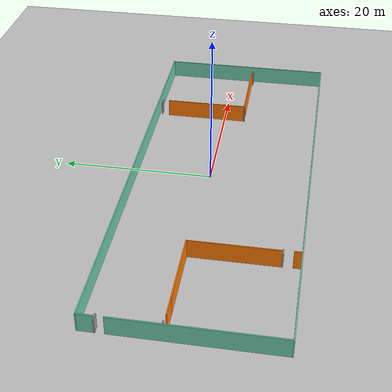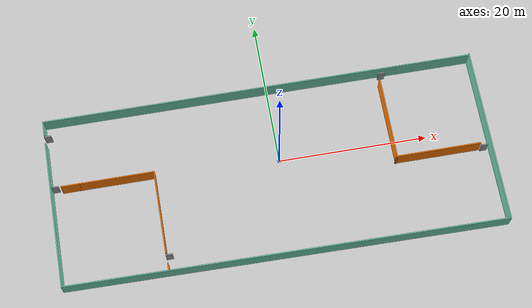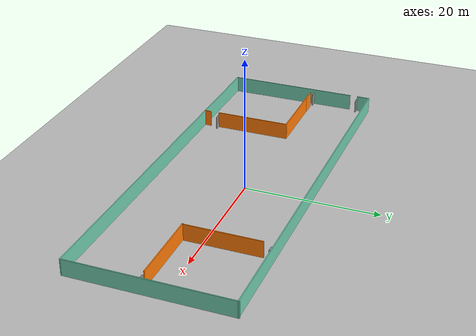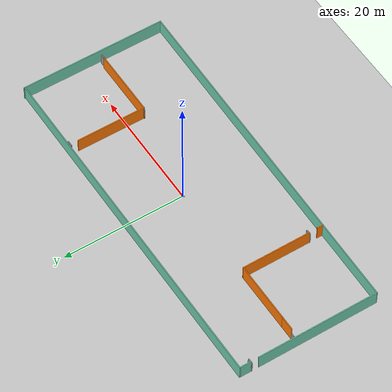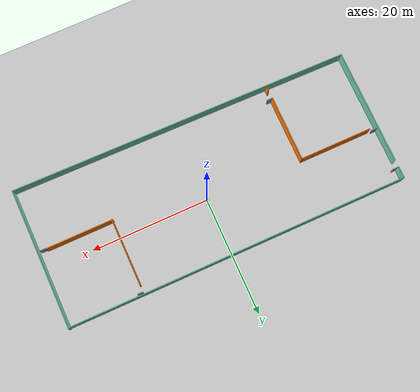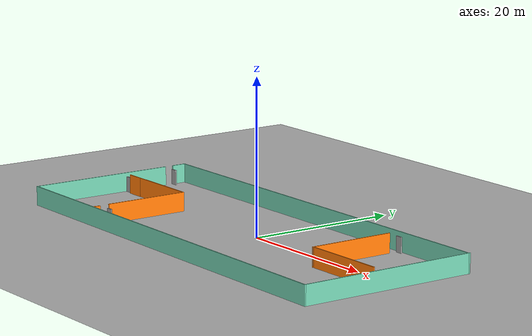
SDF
<sdf version="1.6">
 <world name="default">
  <plugin name="hello" filename="libhello.so"/>
  <light name="sun" type="directional">
   <pose>0 0 10 0 -0 0</pose>
   <diffuse>0.8 0.8 0.8 1</diffuse>
   <specular>0.2 0.2 0.2 1</specular>
   <attenuation>
    <range>1000</range>
    <constant>0.9</constant>
    <linear>0.01</linear>
    <quadratic>0.001</quadratic>
   </attenuation>
   <direction>-0.5 0.1 -0.9</direction>
  </light>
  <model name="ground_plane">
   <static>1</static>
   <link name="link">
    <collision name="collision">
     <geometry><plane><normal>0 0 1</normal><size>100 100</size></plane></geometry>
     <surface>
      <contact><collide_bitmask>65535</collide_bitmask></contact>
      <friction><ode><mu>100</mu><mu2>50</mu2></ode></friction>
     </surface>
    </collision>
    <visual name="visual">
     <cast_shadows>0</cast_shadows>
     <geometry><plane><normal>0 0 1</normal><size>100 100</size></plane></geometry>
     <material>
      <script><uri>file://media/materials/scripts/gazebo.material</uri><name>Gazebo/Grey</name></script>
     </material>
    </visual>
   </link>
  </model>
  <gravity>0 0 -9.8</gravity>
  <magnetic_field>6e-06 2.3e-05 -4.2e-05</magnetic_field>
  <atmosphere type="adiabatic"/>
  <physics name="default_physics" default="0" type="ode">
   <max_step_size>0.001</max_step_size>
   <real_time_factor>1</real_time_factor>
   <real_time_update_rate>1000</real_time_update_rate>
  </physics>
  <scene><ambient>0.4 0.4 0.4 1</ambient><background>0.7 0.7 0.7 1</background><shadows>1</shadows></scene>
  <spherical_coordinates>
   <surface_model>EARTH_WGS84</surface_model>
   <latitude_deg>0</latitude_deg>
   <longitude_deg>0</longitude_deg>
   <elevation>0</elevation>
   <heading_deg>0</heading_deg>
  </spherical_coordinates>
  <model name="HumanoidRobot">
   <link name="link_0">
    <pose>0.02 0 0.1 0 -0 0</pose>
    <inertial>
     <mass>1</mass>
     <inertia>
      <ixx>0.166667</ixx>
      <ixy>0</ixy>
      <ixz>0</ixz>
      <iyy>0.166667</iyy>
      <iyz>0</iyz>
      <izz>0.166667</izz>
     </inertia>
    </inertial>
    <visual name="visual">
     <geometry><box><size>0.4 0.2 0.1</size></box></geometry>
     <material>
      <lighting>1</lighting>
      <script><uri>file://media/materials/scripts/gazebo.material</uri><name>Gazebo/Grey</name></script>
      <shader type="pixel"><normal_map>__default__</normal_map></shader>
      <ambient>0.3 0.3 0.3 1</ambient>
      <diffuse>0.7 0.7 0.7 1</diffuse>
      <specular>0.01 0.01 0.01 1</specular>
      <emissive>0 0 0 1</emissive>
     </material>
    </visual>
    <collision name="collision">
     <geometry><box><size>0.4 0.2 0.1</size></box></geometry>
     <surface>
      <friction>
       <ode><mu>1</mu><mu2>1</mu2><fdir1>0 0 0</fdir1><slip1>0</slip1><slip2>0</slip2></ode>
       <torsional>
        <coefficient>1</coefficient>
        <patch_radius>0</patch_radius>
        <surface_radius>0</surface_radius>
        <use_patch_radius>1</use_patch_radius>
        <ode><slip>0</slip></ode>
       </torsional>
      </friction>
      <bounce><restitution_coefficient>0</restitution_coefficient><threshold>1e+06</threshold></bounce>
      <contact>
       <collide_without_contact>0</collide_without_contact>
       <collide_without_contact_bitmask>1</collide_without_contact_bitmask>
       <collide_bitmask>1</collide_bitmask>
       <ode>
        <soft_cfm>0</soft_cfm>
        <soft_erp>0.2</soft_erp>
        <kp>1e+13</kp>
        <kd>1</kd>
        <max_vel>0.01</max_vel>
        <min_depth>0</min_depth>
       </ode>
       <bullet>
        <split_impulse>1</split_impulse>
        <split_impulse_penetration_threshold>-0.01</split_impulse_penetration_threshold>
        <soft_cfm>0</soft_cfm>
        <soft_erp>0.2</soft_erp>
        <kp>1e+13</kp>
        <kd>1</kd>
       </bullet>
      </contact>
     </surface>
    </collision>
   </link>
   <link name="link_1">
    <pose>0.12 0.13 0.1 0.000335 1.5707 1.57046</pose>
    <inertial>
     <mass>1</mass>
     <inertia><ixx>0.145833</ixx><ixy>0</ixy><ixz>0</ixz><iyy>0.145833</iyy><iyz>0</iyz><izz>0.125</izz></inertia>
    </inertial>
    <visual name="visual">
     <geometry><cylinder><radius>0.1</radius><length>0.05</length></cylinder></geometry>
     <material>
      <lighting>1</lighting>
      <script><uri>file://media/materials/scripts/gazebo.material</uri><name>Gazebo/Grey</name></script>
      <shader type="pixel"><normal_map>__default__</normal_map></shader>
      <ambient>0.3 0.3 0.3 1</ambient>
      <diffuse>0.7 0.7 0.7 1</diffuse>
      <specular>0.01 0.01 0.01 1</specular>
      <emissive>0 0 0 1</emissive>
     </material>
    </visual>
    <collision name="collision">
     <geometry><cylinder><radius>0.1</radius><length>0.05</length></cylinder></geometry>
     <surface>
      <friction>
       <ode><mu>1</mu><mu2>1</mu2><fdir1>0 0 0</fdir1><slip1>0</slip1><slip2>0</slip2></ode>
       <torsional>
        <coefficient>1</coefficient>
        <patch_radius>0</patch_radius>
        <surface_radius>0</surface_radius>
        <use_patch_radius>1</use_patch_radius>
        <ode><slip>0</slip></ode>
       </torsional>
      </friction>
      <bounce><restitution_coefficient>0</restitution_coefficient><threshold>1e+06</threshold></bounce>
      <contact>
       <collide_without_contact>0</collide_without_contact>
       <collide_without_contact_bitmask>1</collide_without_contact_bitmask>
       <collide_bitmask>1</collide_bitmask>
       <ode>
        <soft_cfm>0</soft_cfm>
        <soft_erp>0.2</soft_erp>
        <kp>1e+13</kp>
        <kd>1</kd>
        <max_vel>0.01</max_vel>
        <min_depth>0</min_depth>
       </ode>
       <bullet>
        <split_impulse>1</split_impulse>
        <split_impulse_penetration_threshold>-0.01</split_impulse_penetration_threshold>
        <soft_cfm>0</soft_cfm>
        <soft_erp>0.2</soft_erp>
        <kp>1e+13</kp>
        <kd>1</kd>
       </bullet>
      </contact>
     </surface>
    </collision>
   </link>
   <link name="link_1_clone">
    <pose>0.12 -0.13 0.1 0.000427 1.5707 1.57037</pose>
    <inertial>
     <mass>1</mass>
     <inertia><ixx>0.145833</ixx><ixy>0</ixy><ixz>0</ixz><iyy>0.145833</iyy><iyz>0</iyz><izz>0.125</izz></inertia>
    </inertial>
    <visual name="visual">
     <geometry><cylinder><radius>0.1</radius><length>0.05</length></cylinder></geometry>
     <material>
      <lighting>1</lighting>
      <script><uri>file://media/materials/scripts/gazebo.material</uri><name>Gazebo/Grey</name></script>
      <shader type="pixel"><normal_map>__default__</normal_map></shader>
      <ambient>0.3 0.3 0.3 1</ambient>
      <diffuse>0.7 0.7 0.7 1</diffuse>
      <specular>0.01 0.01 0.01 1</specular>
      <emissive>0 0 0 1</emissive>
     </material>
    </visual>
    <collision name="collision">
     <geometry><cylinder><radius>0.1</radius><length>0.05</length></cylinder></geometry>
     <surface>
      <friction>
       <ode><mu>1</mu><mu2>1</mu2><fdir1>0 0 0</fdir1><slip1>0</slip1><slip2>0</slip2></ode>
       <torsional>
        <coefficient>1</coefficient>
        <patch_radius>0</patch_radius>
        <surface_radius>0</surface_radius>
        <use_patch_radius>1</use_patch_radius>
        <ode><slip>0</slip></ode>
       </torsional>
      </friction>
      <bounce><restitution_coefficient>0</restitution_coefficient><threshold>1e+06</threshold></bounce>
      <contact>
       <collide_without_contact>0</collide_without_contact>
       <collide_without_contact_bitmask>1</collide_without_contact_bitmask>
       <collide_bitmask>1</collide_bitmask>
       <ode>
        <soft_cfm>0</soft_cfm>
        <soft_erp>0.2</soft_erp>
        <kp>1e+13</kp>
        <kd>1</kd>
        <max_vel>0.01</max_vel>
        <min_depth>0</min_depth>
       </ode>
       <bullet>
        <split_impulse>1</split_impulse>
        <split_impulse_penetration_threshold>-0.01</split_impulse_penetration_threshold>
        <soft_cfm>0</soft_cfm>
        <soft_erp>0.2</soft_erp>
        <kp>1e+13</kp>
        <kd>1</kd>
       </bullet>
      </contact>
     </surface>
    </collision>
   </link>
   <link name="link_1_clone_clone">
    <pose>-0.13 -0.13 0.1 4.8e-05 1.5707 1.57075</pose>
    <inertial>
     <mass>1</mass>
     <inertia><ixx>0.145833</ixx><ixy>0</ixy><ixz>0</ixz><iyy>0.145833</iyy><iyz>0</iyz><izz>0.125</izz></inertia>
    </inertial>
    <visual name="visual">
     <geometry><cylinder><radius>0.1</radius><length>0.05</length></cylinder></geometry>
     <material>
      <lighting>1</lighting>
      <script><uri>file://media/materials/scripts/gazebo.material</uri><name>Gazebo/Grey</name></script>
      <shader type="pixel"><normal_map>__default__</normal_map></shader>
      <ambient>0.3 0.3 0.3 1</ambient>
      <diffuse>0.7 0.7 0.7 1</diffuse>
      <specular>0.01 0.01 0.01 1</specular>
      <emissive>0 0 0 1</emissive>
     </material>
    </visual>
    <collision name="collision">
     <geometry><cylinder><radius>0.1</radius><length>0.05</length></cylinder></geometry>
     <surface>
      <friction>
       <ode><mu>1</mu><mu2>1</mu2><fdir1>0 0 0</fdir1><slip1>0</slip1><slip2>0</slip2></ode>
       <torsional>
        <coefficient>1</coefficient>
        <patch_radius>0</patch_radius>
        <surface_radius>0</surface_radius>
        <use_patch_radius>1</use_patch_radius>
        <ode><slip>0</slip></ode>
       </torsional>
      </friction>
      <bounce><restitution_coefficient>0</restitution_coefficient><threshold>1e+06</threshold></bounce>
      <contact>
       <collide_without_contact>0</collide_without_contact>
       <collide_without_contact_bitmask>1</collide_without_contact_bitmask>
       <collide_bitmask>1</collide_bitmask>
       <ode>
        <soft_cfm>0</soft_cfm>
        <soft_erp>0.2</soft_erp>
        <kp>1e+13</kp>
        <kd>1</kd>
        <max_vel>0.01</max_vel>
        <min_depth>0</min_depth>
       </ode>
       <bullet>
        <split_impulse>1</split_impulse>
        <split_impulse_penetration_threshold>-0.01</split_impulse_penetration_threshold>
        <soft_cfm>0</soft_cfm>
        <soft_erp>0.2</soft_erp>
        <kp>1e+13</kp>
        <kd>1</kd>
       </bullet>
      </contact>
     </surface>
    </collision>
   </link>
   <link name="link_1_clone_clone_0">
    <pose>-0.13 0.13 0.1 0.000427 1.5707 1.57037</pose>
    <inertial>
     <mass>1</mass>
     <inertia><ixx>0.145833</ixx><ixy>0</ixy><ixz>0</ixz><iyy>0.145833</iyy><iyz>0</iyz><izz>0.125</izz></inertia>
    </inertial>
    <visual name="visual">
     <geometry><cylinder><radius>0.1</radius><length>0.05</length></cylinder></geometry>
     <material>
      <lighting>1</lighting>
      <script><uri>file://media/materials/scripts/gazebo.material</uri><name>Gazebo/Grey</name></script>
      <shader type="pixel"><normal_map>__default__</normal_map></shader>
      <ambient>0.3 0.3 0.3 1</ambient>
      <diffuse>0.7 0.7 0.7 1</diffuse>
      <specular>0.01 0.01 0.01 1</specular>
      <emissive>0 0 0 1</emissive>
     </material>
    </visual>
    <collision name="collision">
     <geometry><cylinder><radius>0.1</radius><length>0.05</length></cylinder></geometry>
     <surface>
      <friction>
       <ode><mu>1</mu><mu2>1</mu2><fdir1>0 0 0</fdir1><slip1>0</slip1><slip2>0</slip2></ode>
       <torsional>
        <coefficient>1</coefficient>
        <patch_radius>0</patch_radius>
        <surface_radius>0</surface_radius>
        <use_patch_radius>1</use_patch_radius>
        <ode><slip>0</slip></ode>
       </torsional>
      </friction>
      <bounce><restitution_coefficient>0</restitution_coefficient><threshold>1e+06</threshold></bounce>
      <contact>
       <collide_without_contact>0</collide_without_contact>
       <collide_without_contact_bitmask>1</collide_without_contact_bitmask>
       <collide_bitmask>1</collide_bitmask>
       <ode>
        <soft_cfm>0</soft_cfm>
        <soft_erp>0.2</soft_erp>
        <kp>1e+13</kp>
        <kd>1</kd>
        <max_vel>0.01</max_vel>
        <min_depth>0</min_depth>
       </ode>
       <bullet>
        <split_impulse>1</split_impulse>
        <split_impulse_penetration_threshold>-0.01</split_impulse_penetration_threshold>
        <soft_cfm>0</soft_cfm>
        <soft_erp>0.2</soft_erp>
        <kp>1e+13</kp>
        <kd>1</kd>
       </bullet>
      </contact>
     </surface>
    </collision>
   </link>
   <joint name="link_0_JOINT_0" type="revolute">
    <parent>link_0</parent>
    <child>link_1</child>
    <axis>
     <xyz>0 1 0</xyz>
     <use_parent_model_frame>0</use_parent_model_frame>
     <limit>
      <lower>-1.79769e+308</lower>
      <upper>1.79769e+308</upper>
      <effort>-1</effort>
      <velocity>-1</velocity>
     </limit>
     <dynamics>
      <spring_reference>0</spring_reference>
      <spring_stiffness>0</spring_stiffness>
      <damping>0</damping>
     </dynamics>
    </axis>
    <physics>
     <ode><limit><cfm>0</cfm><erp>0.2</erp></limit><suspension><cfm>0</cfm><erp>0.2</erp></suspension></ode>
    </physics>
   </joint>
   <joint name="link_0_JOINT_1" type="revolute">
    <parent>link_0</parent>
    <child>link_1_clone</child>
    <pose>0 0 0 0 -0.06 0</pose>
    <axis>
     <xyz>0 1 0</xyz>
     <use_parent_model_frame>0</use_parent_model_frame>
     <limit>
      <lower>-1.79769e+308</lower>
      <upper>1.79769e+308</upper>
      <effort>-1</effort>
      <velocity>-1</velocity>
     </limit>
     <dynamics>
      <spring_reference>0</spring_reference>
      <spring_stiffness>0</spring_stiffness>
      <damping>0</damping>
     </dynamics>
    </axis>
    <physics>
     <ode><limit><cfm>0</cfm><erp>0.2</erp></limit><suspension><cfm>0</cfm><erp>0.2</erp></suspension></ode>
    </physics>
   </joint>
   <joint name="link_0_JOINT_2" type="revolute">
    <parent>link_0</parent>
    <child>link_1_clone_clone</child>
    <axis>
     <xyz>0 1 0</xyz>
     <use_parent_model_frame>0</use_parent_model_frame>
     <limit>
      <lower>-1.79769e+308</lower>
      <upper>1.79769e+308</upper>
      <effort>-1</effort>
      <velocity>-1</velocity>
     </limit>
     <dynamics>
      <spring_reference>0</spring_reference>
      <spring_stiffness>0</spring_stiffness>
      <damping>0</damping>
     </dynamics>
    </axis>
    <physics>
     <ode><limit><cfm>0</cfm><erp>0.2</erp></limit><suspension><cfm>0</cfm><erp>0.2</erp></suspension></ode>
    </physics>
   </joint>
   <joint name="link_0_JOINT_3" type="revolute">
    <parent>link_0</parent>
    <child>link_1_clone_clone_0</child>
    <axis>
     <xyz>0 1 0</xyz>
     <use_parent_model_frame>0</use_parent_model_frame>
     <limit>
      <lower>-1.79769e+308</lower>
      <upper>1.79769e+308</upper>
      <effort>-1</effort>
      <velocity>-1</velocity>
     </limit>
     <dynamics>
      <spring_reference>0</spring_reference>
      <spring_stiffness>0</spring_stiffness>
      <damping>0</damping>
     </dynamics>
    </axis>
    <physics>
     <ode><limit><cfm>0</cfm><erp>0.2</erp></limit><suspension><cfm>0</cfm><erp>0.2</erp></suspension></ode>
    </physics>
   </joint>
   <static>0</static>
  </model>
  <model name="Building">
   <pose>-1.11028 -1.8145 0 0 -0 0</pose>
   <link name="Door_0">
    <collision name="Door_0_Collision">
     <geometry><box><size>0.9 0.17 2</size></box></geometry>
     <pose>0 0 1 0 -0 0</pose>
    </collision>
    <visual name="Door_0_Visual">
     <pose>0 0 1 0 -0 0</pose>
     <geometry><box><size>0.9 0.17 2</size></box></geometry>
     <material>
      <script><uri>file://media/materials/scripts/gazebo.material</uri><name>Gazebo/Grey</name></script>
     </material>
    </visual>
    <pose>-28.7575 9.84664 0 0 -0 0</pose>
   </link>
   <link name="Door_1">
    <collision name="Door_1_Collision">
     <geometry><box><size>0.9 0.17 2</size></box></geometry>
     <pose>0 0 1 0 -0 0</pose>
    </collision>
    <visual name="Door_1_Visual">
     <pose>0 0 1 0 -0 0</pose>
     <geometry><box><size>0.9 0.17 2</size></box></geometry>
     <material>
      <script><uri>file://media/materials/scripts/gazebo.material</uri><name>Gazebo/Grey</name></script>
     </material>
    </visual>
    <pose>-15.1147 -9.07776 0 0 -0 0</pose>
   </link>
   <link name="Door_2">
    <collision name="Door_2_Collision">
     <geometry><box><size>0.9 0.17 2</size></box></geometry>
     <pose>0 0 1 0 -0 0</pose>
    </collision>
    <visual name="Door_2_Visual">
     <pose>0 0 1 0 -0 0</pose>
     <geometry><box><size>0.9 0.17 2</size></box></geometry>
     <material>
      <script><uri>file://media/materials/scripts/gazebo.material</uri><name>Gazebo/Grey</name></script>
     </material>
    </visual>
    <pose>-28.5663 2.5444 0 0 -0 0</pose>
   </link>
   <link name="Door_4">
    <collision name="Door_4_Collision">
     <geometry><box><size>0.9 0.17 2</size></box></geometry>
     <pose>0 0 1 0 -0 0</pose>
    </collision>
    <visual name="Door_4_Visual">
     <pose>0 0 1 0 -0 0</pose>
     <geometry><box><size>0.9 0.17 2</size></box></geometry>
     <material>
      <script><uri>file://media/materials/scripts/gazebo.material</uri><name>Gazebo/Grey</name></script>
     </material>
    </visual>
    <pose>28.2667 -1.23216 0 0 -0 0</pose>
   </link>
   <link name="Door_5">
    <collision name="Door_5_Collision">
     <geometry><box><size>0.9 0.17 2</size></box></geometry>
     <pose>0 0 1 0 -0 0</pose>
    </collision>
    <visual name="Door_5_Visual">
     <pose>0 0 1 0 -0 0</pose>
     <geometry><box><size>0.9 0.17 2</size></box></geometry>
     <material>
      <script><uri>file://media/materials/scripts/gazebo.material</uri><name>Gazebo/Grey</name></script>
     </material>
    </visual>
    <pose>16.8813 11.3908 0 0 -0 0</pose>
   </link>
   <link name="Wall_0">
    <collision name="Wall_0_Collision">
     <geometry><box><size>19.8005 0.15 2.5</size></box></geometry>
     <pose>0 0 1.25 0 -0 0</pose>
    </collision>
    <visual name="Wall_0_Visual">
     <pose>0 0 1.25 0 -0 0</pose>
     <geometry><box><size>19.8005 0.15 2.5</size></box></geometry>
     <material>
      <script><uri>file://media/materials/scripts/gazebo.material</uri><name>Gazebo/Grey</name></script>
      <ambient>0.435294 0.796078 0.67451 1</ambient>
     </material>
     <meta><layer>0</layer></meta>
    </visual>
    <pose>-29.1106 -1.17691 0 0 0 -1.5708</pose>
   </link>
   <link name="Wall_1">
    <collision name="Wall_1_Collision">
     <geometry><box><size>58.3767 0.15 2.5</size></box></geometry>
     <pose>0 0 1.25 0 -0 0</pose>
    </collision>
    <visual name="Wall_1_Visual">
     <pose>0 0 1.25 0 -0 0</pose>
     <geometry><box><size>58.3767 0.15 2.5</size></box></geometry>
     <material>
      <script><uri>file://media/materials/scripts/gazebo.material</uri><name>Gazebo/Grey</name></script>
      <ambient>0.435294 0.796078 0.67451 1</ambient>
     </material>
     <meta><layer>0</layer></meta>
    </visual>
    <pose>0 -11.524 0 0 0 -0.013673</pose>
   </link>
   <link name="Wall_12">
    <collision name="Wall_12_Collision">
     <geometry><box><size>2.5 0.15 2.5</size></box></geometry>
     <pose>0 0 1.25 0 -0 0</pose>
    </collision>
    <visual name="Wall_12_Visual">
     <pose>0 0 1.25 0 -0 0</pose>
     <geometry><box><size>2.5 0.15 2.5</size></box></geometry>
     <material>
      <script><uri>file://media/materials/scripts/gazebo.material</uri><name>Gazebo/Grey</name></script>
      <ambient>0.996078 0.47451 0.0196078 1</ambient>
     </material>
     <meta><layer>0</layer></meta>
    </visual>
    <pose>-26.5095 2.28662 0 0 -0 3.14159</pose>
   </link>
   <link name="Wall_14">
    <collision name="Wall_14_Collision">
     <geometry><box><size>0.25 0.15 2.5</size></box></geometry>
     <pose>0 0 1.25 0 -0 0</pose>
    </collision>
    <visual name="Wall_14_Visual">
     <pose>0 0 1.25 0 -0 0</pose>
     <geometry><box><size>0.25 0.15 2.5</size></box></geometry>
     <material>
      <script><uri>file://media/materials/scripts/gazebo.material</uri><name>Gazebo/Grey</name></script>
      <ambient>1 1 1 1</ambient>
     </material>
     <meta><layer>0</layer></meta>
    </visual>
    <pose>16.343 -1.08341 0 0 -0 2.61799</pose>
   </link>
   <link name="Wall_15">
    <collision name="Wall_15_Collision">
     <geometry><box><size>11.5 0.15 2.5</size></box></geometry>
     <pose>0 0 1.25 0 -0 0</pose>
    </collision>
    <visual name="Wall_15_Visual">
     <pose>0 0 1.25 0 -0 0</pose>
     <geometry><box><size>11.5 0.15 2.5</size></box></geometry>
     <material>
      <script><uri>file://media/materials/scripts/gazebo.material</uri><name>Gazebo/Grey</name></script>
      <ambient>0.996078 0.47451 0.0196078 1</ambient>
     </material>
     <meta><layer>0</layer></meta>
    </visual>
    <pose>21.9747 -1.05841 0 0 -0 0</pose>
   </link>
   <link name="Wall_17">
    <collision name="Wall_17_Collision">
     <geometry><box><size>11.5 0.15 2.5</size></box></geometry>
     <pose>0 0 1.25 0 -0 0</pose>
    </collision>
    <visual name="Wall_17_Visual">
     <pose>0 0 1.25 0 -0 0</pose>
     <geometry><box><size>11.5 0.15 2.5</size></box></geometry>
     <material>
      <script><uri>file://media/materials/scripts/gazebo.material</uri><name>Gazebo/Grey</name></script>
      <ambient>0.996078 0.47451 0.0196078 1</ambient>
     </material>
     <meta><layer>0</layer></meta>
    </visual>
    <pose>16.3863 4.56659 0 0 -0 1.5708</pose>
   </link>
   <link name="Wall_2">
    <collision name="Wall_2_Collision">
     <geometry><box><size>23.8713 0.15 2.5</size></box></geometry>
     <pose>0 0 1.25 0 -0 0</pose>
    </collision>
    <visual name="Wall_2_Visual">
     <pose>0 0 1.25 0 -0 0</pose>
     <geometry><box><size>23.8713 0.15 2.5</size></box></geometry>
     <material>
      <script><uri>file://media/materials/scripts/gazebo.material</uri><name>Gazebo/Grey</name></script>
      <ambient>0.435294 0.796078 0.67451 1</ambient>
     </material>
     <meta><layer>0</layer></meta>
    </visual>
    <pose>29.1106 0.062386 0 0 -0 1.5708</pose>
   </link>
   <link name="Wall_3">
    <collision name="Wall_3_Collision">
     <geometry><box><size>58.3714 0.15 2.5</size></box></geometry>
     <pose>0 0 1.25 0 -0 0</pose>
    </collision>
    <visual name="Wall_3_Visual">
     <pose>0 0 1.25 0 -0 0</pose>
     <geometry><box><size>58.3714 0.15 2.5</size></box></geometry>
     <material>
      <script><uri>file://media/materials/scripts/gazebo.material</uri><name>Gazebo/Grey</name></script>
      <ambient>0.435294 0.796078 0.67451 1</ambient>
     </material>
     <meta><layer>0</layer></meta>
    </visual>
    <pose>0 11.7993 0 0 -0 3.14159</pose>
   </link>
   <link name="Wall_4">
    <collision name="Wall_4_Collision">
     <geometry><box><size>2 0.15 2.5</size></box></geometry>
     <pose>0 0 1.25 0 -0 0</pose>
    </collision>
    <visual name="Wall_4_Visual">
     <pose>0 0 1.25 0 -0 0</pose>
     <geometry><box><size>2 0.15 2.5</size></box></geometry>
     <material>
      <script><uri>file://media/materials/scripts/gazebo.material</uri><name>Gazebo/Grey</name></script>
      <ambient>0.435294 0.796078 0.67451 1</ambient>
     </material>
     <meta><layer>0</layer></meta>
    </visual>
    <pose>-29.1106 10.8743 0 0 0 -1.5708</pose>
   </link>
   <link name="Wall_6">
    <collision name="Wall_6_Collision">
     <geometry><box><size>10 0.15 2.5</size></box></geometry>
     <pose>0 0 1.25 0 -0 0</pose>
    </collision>
    <visual name="Wall_6_Visual">
     <pose>0 0 1.25 0 -0 0</pose>
     <geometry><box><size>10 0.15 2.5</size></box></geometry>
     <material>
      <script><uri>file://media/materials/scripts/gazebo.material</uri><name>Gazebo/Grey</name></script>
      <ambient>0.996078 0.47451 0.0196078 1</ambient>
     </material>
     <meta><layer>0</layer></meta>
    </visual>
    <pose>-20.4095 2.28662 0 0 -0 0</pose>
   </link>
   <link name="Wall_7">
    <collision name="Wall_7_Collision">
     <geometry><box><size>11.3585 0.15 2.5</size></box></geometry>
     <pose>0 0 1.25 0 -0 0</pose>
    </collision>
    <visual name="Wall_7_Visual">
     <pose>0 0 1.25 0 -0 0</pose>
     <geometry><box><size>11.3585 0.15 2.5</size></box></geometry>
     <material>
      <script><uri>file://media/materials/scripts/gazebo.material</uri><name>Gazebo/Grey</name></script>
      <ambient>0.996078 0.47451 0.0196078 1</ambient>
     </material>
     <meta><layer>0</layer></meta>
    </visual>
    <pose>-15.4845 -3.31763 0 0 0 -1.5708</pose>
   </link>
   <link name="Wall_9">
    <collision name="Wall_9_Collision">
     <geometry><box><size>1 0.15 2.5</size></box></geometry>
     <pose>0 0 1.25 0 -0 0</pose>
    </collision>
    <visual name="Wall_9_Visual">
     <pose>0 0 1.25 0 -0 0</pose>
     <geometry><box><size>1 0.15 2.5</size></box></geometry>
     <material>
      <script><uri>file://media/materials/scripts/gazebo.material</uri><name>Gazebo/Grey</name></script>
      <ambient>0.996078 0.47451 0.0196078 1</ambient>
     </material>
     <meta><layer>0</layer></meta>
    </visual>
    <pose>-15.4375 -10.805 0 0 -0 1.5708</pose>
   </link>
   <static>1</static>
  </model>
 </world>
</sdf>
